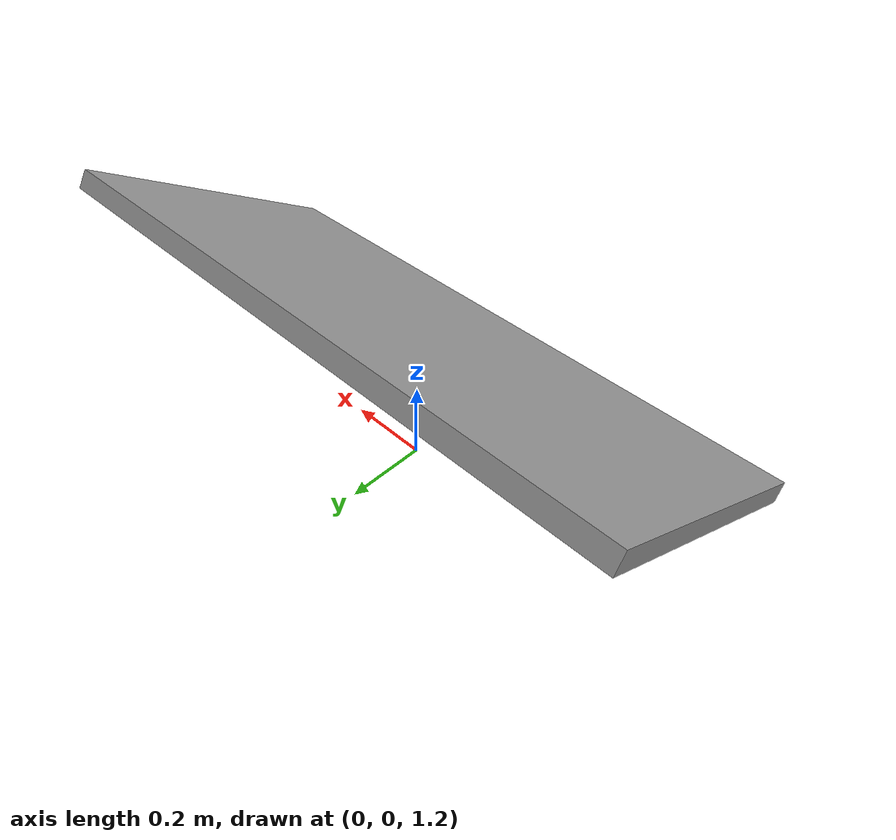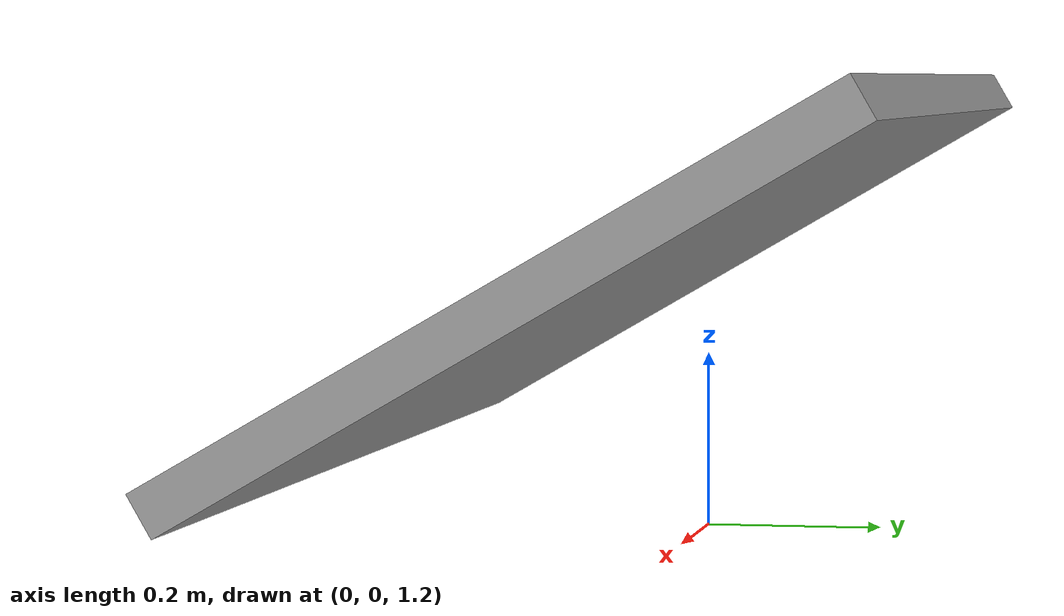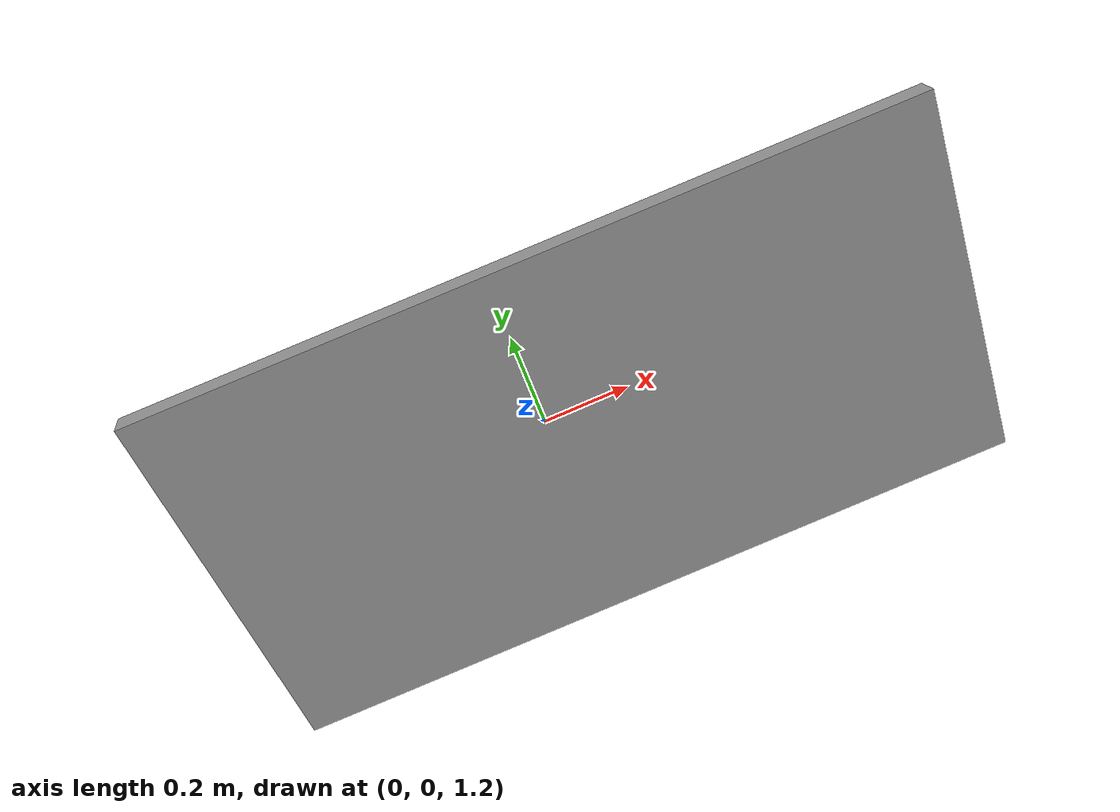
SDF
<?xml version='1.0'?>
<sdf version='1.6'>
  <model name='inclined_wall_60deg_0_0'>
    <link name='link_3'>
      <pose frame=''>0.095196 -0.063979 1.5 -1.04667 -0 -0</pose>
      <inertial>
        <mass>0.432144</mass>
        <inertia>
          <ixx>0.104972</ixx>
          <ixy>0</ixy>
          <ixz>0</ixz>
          <iyy>0.594845</iyy>
          <iyz>0</iyz>
          <izz>0.490213</izz>
        </inertia>
        <pose frame=''>0 0 0 0 -0 0</pose>
      </inertial>
      <self_collide>0</self_collide>
      <kinematic>0</kinematic>
      <gravity>1</gravity>
      <visual name='visual'>
        <pose frame=''>0 0 0 0 -0 0</pose>
        <geometry>
          <box>
            <size>1.6 0.05 0.8</size>
          </box>
        </geometry>
        <material>
          <lighting>1</lighting>
          <script>
            <uri>file://media/materials/scripts/gazebo.material</uri>
            <name>Gazebo/Grey</name>
          </script>
          <shader type='pixel'>
            <normal_map>__default__</normal_map>
          </shader>
          <ambient>0.3 0.3 0.3 1</ambient>
          <diffuse>0.7 0.7 0.7 1</diffuse>
          <specular>0.01 0.01 0.01 1</specular>
          <emissive>0 0 0 1</emissive>
        </material>
        <transparency>0</transparency>
        <cast_shadows>1</cast_shadows>
      </visual>
      <collision name='collision'>
        <laser_retro>0</laser_retro>
        <max_contacts>10</max_contacts>
        <pose frame=''>0 0 0 0 -0 0</pose>
        <geometry>
          <box>
            <size>1.6 0.05 0.8</size>
          </box>
        </geometry>
        <surface>
          <friction>
            <ode>
              <mu>1</mu>
              <mu2>1</mu2>
              <fdir1>0 0 0</fdir1>
              <slip1>0</slip1>
              <slip2>0</slip2>
            </ode>
            <torsional>
              <coefficient>1</coefficient>
              <patch_radius>0</patch_radius>
              <surface_radius>0</surface_radius>
              <use_patch_radius>1</use_patch_radius>
              <ode>
                <slip>0</slip>
              </ode>
            </torsional>
          </friction>
          <bounce>
            <restitution_coefficient>0</restitution_coefficient>
            <threshold>1e+06</threshold>
          </bounce>
          <contact>
            <collide_without_contact>0</collide_without_contact>
            <collide_without_contact_bitmask>1</collide_without_contact_bitmask>
            <collide_bitmask>1</collide_bitmask>
            <ode>
              <soft_cfm>0</soft_cfm>
              <soft_erp>0.2</soft_erp>
              <kp>1e+13</kp>
              <kd>1</kd>
              <max_vel>0.01</max_vel>
              <min_depth>0</min_depth>
            </ode>
            <bullet>
              <split_impulse>1</split_impulse>
              <split_impulse_penetration_threshold>-0.01</split_impulse_penetration_threshold>
              <soft_cfm>0</soft_cfm>
              <soft_erp>0.2</soft_erp>
              <kp>1e+13</kp>
              <kd>1</kd>
            </bullet>
          </contact>
        </surface>
      </collision>
    </link>
    <static>1</static>
    <allow_auto_disable>1</allow_auto_disable>
  </model>
</sdf>
